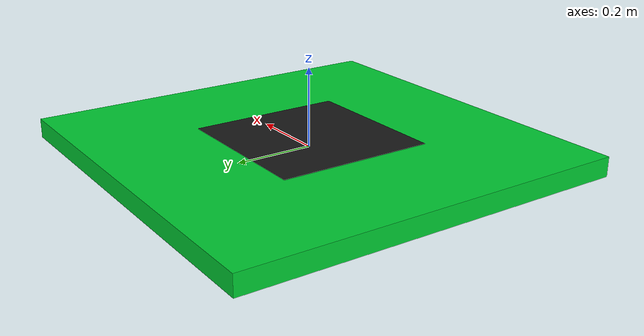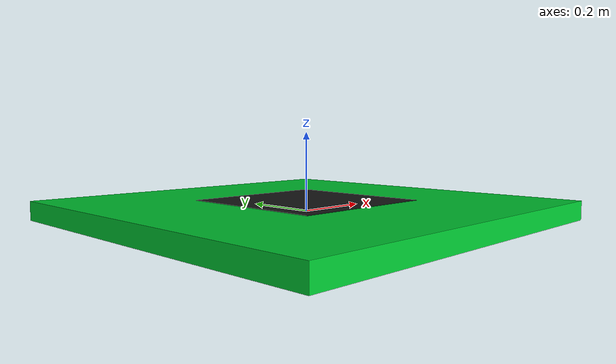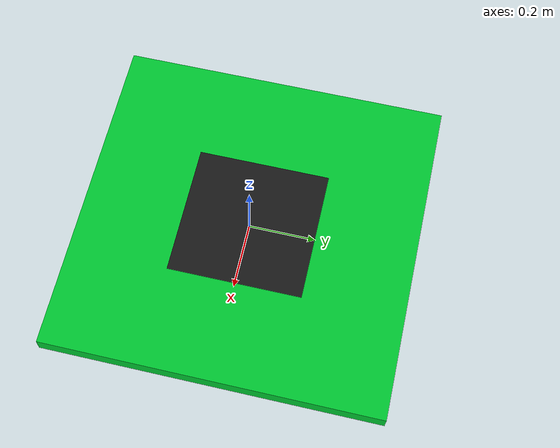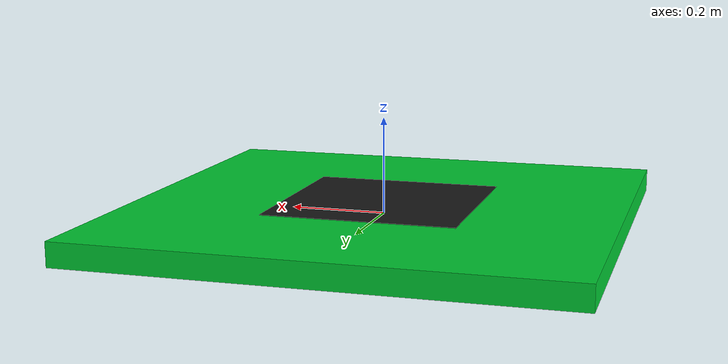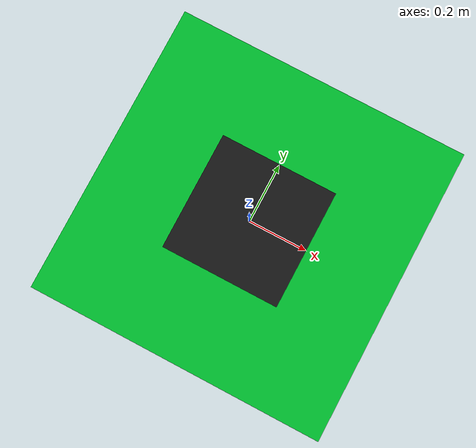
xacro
<?xml version="1.0"?>
<robot name="landing_platform" xmlns:xacro="http://www.ros.org/wiki/xacro">

  <link name="platform_base">
    <visual>
      <geometry><box size="1.0 1.0 0.05"/></geometry>
      <material name="green"><color rgba="0.0 0.8 0.2 1.0"/></material>
    </visual>
    <collision>
      <geometry><box size="1.0 1.0 0.05"/></geometry>
    </collision>
    <inertial>
      <mass value="50.0"/>
      <inertia ixx="4.17" iyy="4.17" izz="8.33" ixy="0" ixz="0" iyz="0"/>
    </inertial>
  </link>

  <!-- ArUco marker visual (ID 0, 40x40cm) -->
  <link name="marker_link">
    <visual>
      <origin xyz="0 0 0.001"/>
      <geometry><box size="0.4 0.4 0.001"/></geometry>
      <material name="aruco"><color rgba="0.1 0.1 0.1 1.0"/></material>
    </visual>
    <inertial>
      <mass value="0.001"/>
      <inertia ixx="0.000001" iyy="0.000001" izz="0.000001" ixy="0" ixz="0" iyz="0"/>
    </inertial>
  </link>
  <joint name="marker_joint" type="fixed">
    <parent link="platform_base"/><child link="marker_link"/>
    <origin xyz="0 0 0.026" rpy="0 0 0"/>
  </joint>

  <gazebo>
    <plugin name="platform_move" filename="libgazebo_ros_planar_move.so">
      <ros>
        <namespace>platform</namespace>
        <remapping>cmd_vel:=cmd_vel</remapping>
        <remapping>odom:=odom</remapping>
      </ros>
      <update_rate>100</update_rate>
      <publish_rate>20</publish_rate>
      <publish_odom>true</publish_odom>
      <publish_odom_tf>true</publish_odom_tf>
      <odometry_frame>odom</odometry_frame>
      <robot_base_frame>platform_base</robot_base_frame>
    </plugin>
  </gazebo>

</robot>
